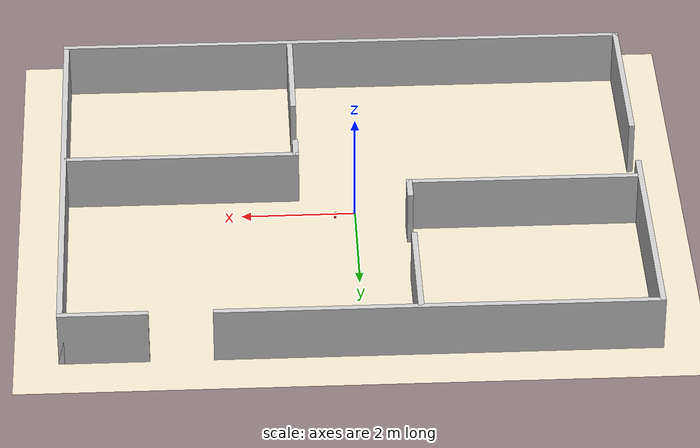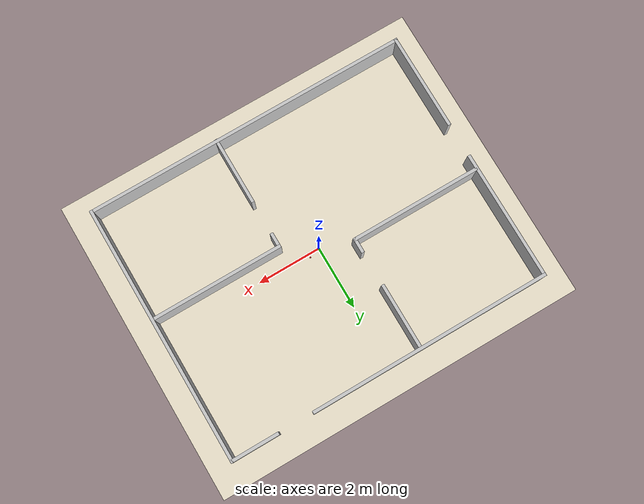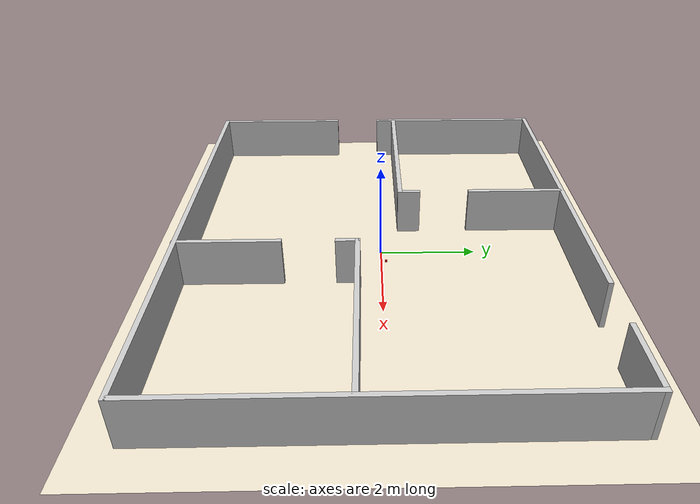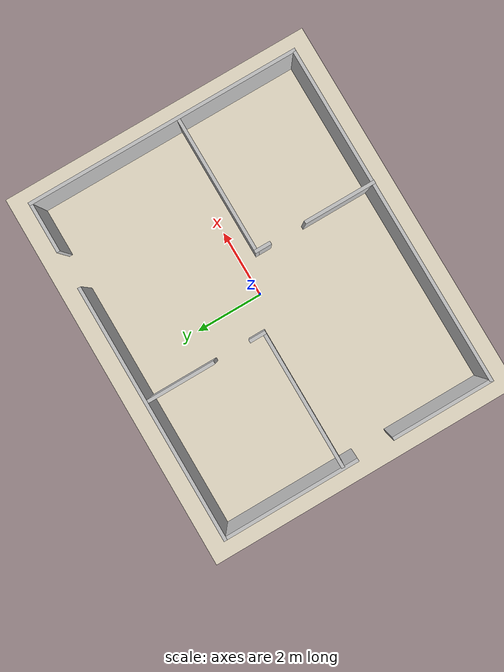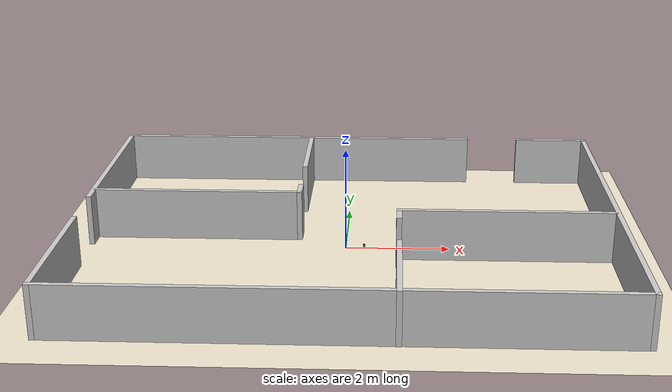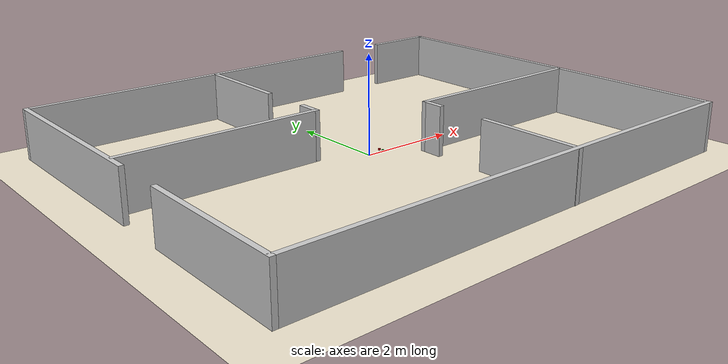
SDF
<?xml version="1.0" ?>
<sdf version="1.6">
  <world name="robot_world">
    <physics name="1ms" type="ignored">
      <max_step_size>0.001</max_step_size>
      <real_time_factor>1.0</real_time_factor>
      <real_time_update_rate>1000</real_time_update_rate>
    </physics>
    <plugin
      filename="ignition-gazebo-physics-system"
      name="gz::sim::systems::Physics">
    </plugin>
    <plugin
      filename="ignition-gazebo-user-commands-system"
      name="gz::sim::systems::UserCommands">
    </plugin>
    <plugin
      filename="ignition-gazebo-scene-broadcaster-system"
      name="gz::sim::systems::SceneBroadcaster">
    </plugin>
    <plugin
      filename="ignition-gazebo-contact-system"
      name="gz::sim::systems::Contact">
    </plugin>
    <gui fullscreen="0">
          <!-- 3D scene -->
          <plugin filename="MinimalScene" name="3D View">
            <gz-gui>
              <title>3D View</title>
              <property type="bool" key="showTitleBar">false</property>
              <property type="string" key="state">docked</property>
            </gz-gui>
            <engine>ogre2</engine>
            <scene>scene</scene>
            <ambient_light>0.4 0.4 0.4</ambient_light>
            <background_color>0.8 0.8 0.8</background_color>
            <camera_pose>-3.5 0 6 0 1.27 0</camera_pose>
            <camera_clip>
              <near>0.25</near>
              <far>25000</far>
            </camera_clip>
          </plugin>

          <!-- Insert simple shapes -->
          <plugin filename="Shapes" name="Shapes">
            <gz-gui>
              <property key="resizable" type="bool">false</property>
              <property key="x" type="double">0</property>
              <property key="y" type="double">0</property>
              <property key="width" type="double">250</property>
              <property key="height" type="double">50</property>
              <property key="state" type="string">floating</property>
              <property key="showTitleBar" type="bool">false</property>
              <property key="cardBackground" type="string">#666666</property>
            </gz-gui>
          </plugin>
          <!-- Translate / rotate -->
          <plugin filename="TransformControl" name="Transform control">
            <gz-gui>
              <property key="resizable" type="bool">false</property>
              <property key="x" type="double">0</property>
              <property key="y" type="double">50</property>
              <property key="width" type="double">250</property>
              <property key="height" type="double">50</property>
              <property key="state" type="string">floating</property>
              <property key="showTitleBar" type="bool">false</property>
              <property key="cardBackground" type="string">#777777</property>
            </gz-gui>
          </plugin>

          <!-- Entity tree -->
          <plugin filename="EntityTree" name="Entity tree">
            <gz-gui>
              <property type="string" key="state">docked_collapsed</property>
            </gz-gui>
          </plugin>

          <!-- Inspector -->
          <plugin filename="ComponentInspector" name="Component inspector">
            <gz-gui>
              <property type="string" key="state">docked_collapsed</property>
            </gz-gui>
          </plugin>

          <!-- World control -->
          <plugin filename="WorldControl" name="World control">
            <gz-gui>
              <title>World control</title>
              <property type="bool" key="showTitleBar">false</property>
              <property type="bool" key="resizable">false</property>
              <property type="double" key="height">72</property>
              <property type="double" key="width">121</property>
              <property type="double" key="z">1</property>

              <property type="string" key="state">floating</property>
              <anchors target="3D View">
                <line own="left" target="left"/>
                <line own="bottom" target="bottom"/>
              </anchors>
            </gz-gui>

            <play_pause>true</play_pause>
            <step>true</step>
            <start_paused>true</start_paused>
            <use_event>true</use_event>

          </plugin>

          <!-- Teleop -->
          <plugin filename="Teleop" name="ignition::gui::plugins::Teleop">
            <topic>/controller/cmd_vel</topic>
            <ignition-gui>
              <property type="bool" key="showTitleBar">true</property>
              <property type="string" key="state">docked</property>
              <property key="resizable" type="bool">true</property>
            </ignition-gui>
          </plugin>

          <!-- visualize lidar -->

          <!-- View angle -->
          <plugin filename="ViewAngle" name="View angle">
            <gz-gui>
              <property type="string" key="state">docked_collapsed</property>
            </gz-gui>
          </plugin>

          <!-- Plugins that add functionality to the scene -->
          <plugin filename="EntityContextMenuPlugin" name="Entity context menu">
          <gz-gui>
            <property key="state" type="string">floating</property>
            <property key="width" type="double">5</property>
            <property key="height" type="double">5</property>
            <property key="showTitleBar" type="bool">false</property>
          </gz-gui>
          </plugin>
          <plugin filename="GzSceneManager" name="Scene Manager">
          <gz-gui>
            <property key="resizable" type="bool">false</property>
            <property key="width" type="double">5</property>
            <property key="height" type="double">5</property>
            <property key="state" type="string">floating</property>
            <property key="showTitleBar" type="bool">false</property>
          </gz-gui>
          </plugin>
          <plugin filename="InteractiveViewControl" name="Interactive view control">
          <gz-gui>
            <property key="resizable" type="bool">false</property>
            <property key="width" type="double">5</property>
            <property key="height" type="double">5</property>
            <property key="state" type="string">floating</property>
            <property key="showTitleBar" type="bool">false</property>
          </gz-gui>
          </plugin>
          <plugin filename="CameraTracking" name="Camera Tracking">
          <gz-gui>
            <property key="resizable" type="bool">false</property>
            <property key="width" type="double">5</property>
            <property key="height" type="double">5</property>
            <property key="state" type="string">floating</property>
            <property key="showTitleBar" type="bool">false</property>
          </gz-gui>
          </plugin>
          <plugin filename="MarkerManager" name="Marker manager">
          <gz-gui>
            <property key="resizable" type="bool">false</property>
            <property key="width" type="double">5</property>
            <property key="height" type="double">5</property>
            <property key="state" type="string">floating</property>
            <property key="showTitleBar" type="bool">false</property>
          </gz-gui>
          </plugin>
          <plugin filename="SelectEntities" name="Select Entities">
          <gz-gui>
            <anchors target="Select entities">
              <line own="right" target="right"/>
              <line own="top" target="top"/>
            </anchors>
            <property key="resizable" type="bool">false</property>
            <property key="width" type="double">5</property>
            <property key="height" type="double">5</property>
            <property key="state" type="string">floating</property>
            <property key="showTitleBar" type="bool">false</property>
          </gz-gui>
          </plugin>
          <plugin filename="VisualizationCapabilities" name="Visualization Capabilities">
          <gz-gui>
            <property key="resizable" type="bool">false</property>
            <property key="width" type="double">5</property>
            <property key="height" type="double">5</property>
            <property key="state" type="string">floating</property>
            <property key="showTitleBar" type="bool">false</property>
          </gz-gui>
          </plugin>

          <plugin filename="Spawn" name="Spawn Entities">
          <gz-gui>
            <anchors target="Select entities">
              <line own="right" target="right"/>
              <line own="top" target="top"/>
            </anchors>
            <property key="resizable" type="bool">false</property>
            <property key="width" type="double">5</property>
            <property key="height" type="double">5</property>
            <property key="state" type="string">floating</property>
            <property key="showTitleBar" type="bool">false</property>
          </gz-gui>
          </plugin>

          <!-- World statistics -->
          <plugin filename="WorldStats" name="World stats">
          <gz-gui>
            <title>World stats</title>
            <property type="bool" key="showTitleBar">false</property>
            <property type="bool" key="resizable">false</property>
            <property type="double" key="height">110</property>
            <property type="double" key="width">290</property>
            <property type="double" key="z">1</property>

            <property type="string" key="state">floating</property>
            <anchors target="3D View">
              <line own="right" target="right"/>
              <line own="bottom" target="bottom"/>
            </anchors>
          </gz-gui>

          <sim_time>true</sim_time>
          <real_time>true</real_time>
          <real_time_factor>true</real_time_factor>
          <iterations>true</iterations>
          </plugin>

          <!-- Insert lights -->
          <plugin filename="Lights" name="Lights">
          <gz-gui>
            <property key="resizable" type="bool">false</property>
            <property key="x" type="double">250</property>
            <property key="y" type="double">0</property>
            <property key="width" type="double">150</property>
            <property key="height" type="double">50</property>
            <property key="state" type="string">floating</property>
            <property key="showTitleBar" type="bool">false</property>
            <property key="cardBackground" type="string">#666666</property>
          </gz-gui>
          </plugin>

          <!-- Screenshot -->
          <plugin filename="Screenshot" name="Screenshot">
          <gz-gui>
            <property key="resizable" type="bool">false</property>
            <property key="x" type="double">250</property>
            <property key="y" type="double">50</property>
            <property key="width" type="double">50</property>
            <property key="height" type="double">50</property>
            <property key="state" type="string">floating</property>
            <property key="showTitleBar" type="bool">false</property>
            <property key="cardBackground" type="string">#777777</property>
          </gz-gui>
          </plugin>

    </gui>
    <scene>
      <ambient>1.0 1.0 1.0</ambient>
      <background>0.8 0.8 0.8</background>
    </scene>
    <light type="directional" name="sun">
      <cast_shadows>true</cast_shadows>
      <pose>0 0 10 0 0 0</pose>
      <diffuse>0.8 0.8 0.8 1</diffuse>
      <specular>0.2 0.2 0.2 1</specular>
      <attenuation>
        <range>1000</range>
        <constant>0.9</constant>
        <linear>0.01</linear>
        <quadratic>0.001</quadratic>
      </attenuation>
      <direction>-0.5 0.1 -0.9</direction>
    </light>

    <model name="ground_plane">
      <static>true</static>
      <link name="link">
        <collision name="collision">
          <geometry>
            <plane>
              <normal>0 0 1</normal>
              <size>100 100</size>
            </plane>
          </geometry>
        </collision>
        <visual name="visual">
          <geometry>
            <plane>
              <normal>0 0 1</normal>
              <size>100 100</size>
            </plane>
          </geometry>
          <material>
            <ambient>0.94 0.90 0.81 1</ambient>
            <diffuse>0.94 0.90 0.81 1</diffuse>
            <specular>1 1 1 0</specular>
          </material>
        </visual>
      </link>
    </model>
    <model name='RoboCup_Home'>
      <pose frame=''>0.0595 -0.023998 0 0 -0 0</pose>
      <link name='Wall_10'>
        <collision name='Wall_10_Collision'>
          <geometry>
            <box>
              <size>8.139 0.1 1</size>
            </box>
          </geometry>
          <pose frame=''>0 0 0.5 0 -0 0</pose>
          <max_contacts>10</max_contacts>
          <surface>
            <contact>
              <ode/>
            </contact>
            <bounce/>
            <friction>
              <torsional>
                <ode/>
              </torsional>
              <ode/>
            </friction>
          </surface>
        </collision>
        <visual name='Wall_10_Visual'>
          <pose frame=''>0 0 0.5 0 -0 0</pose>
          <geometry>
            <box>
              <size>8.139 0.1 1</size>
            </box>
          </geometry>
          <material>
            <ambient>0.8 0.8 0.8 1</ambient>
            <diffuse>0.8 0.8 0.8 1</diffuse>
            <specular>0.8 0.8 0.8 1</specular>
          </material>
        </visual>
        <pose frame=''>5.0505 0.004498 0 0 -0 1.5708</pose>
        <self_collide>0</self_collide>
        <kinematic>0</kinematic>
        <gravity>1</gravity>
      </link>
      <link name='Wall_16'>
        <collision name='Wall_16_Collision'>
          <geometry>
            <box>
              <size>3.03123 0.1 1</size>
            </box>
          </geometry>
          <pose frame=''>0 0 0.5 0 -0 0</pose>
          <max_contacts>10</max_contacts>
          <surface>
            <contact>
              <ode/>
            </contact>
            <bounce/>
            <friction>
              <torsional>
                <ode/>
              </torsional>
              <ode/>
            </friction>
          </surface>
        </collision>
        <visual name='Wall_16_Visual'>
          <pose frame=''>0 0 0.5 0 -0 0</pose>
          <geometry>
            <box>
              <size>3.03123 0.1 1</size>
            </box>
          </geometry>
          <material>
            <ambient>0.8 0.8 0.8 1</ambient>
            <diffuse>0.8 0.8 0.8 1</diffuse>
            <specular>0.8 0.8 0.8 1</specular>
          </material>
        </visual>
        <pose frame=''>-5.0505 -2.5495 0 0 -0 1.5708</pose>
        <self_collide>0</self_collide>
        <kinematic>0</kinematic>
        <gravity>1</gravity>
      </link>
      <link name='Wall_18'>
        <collision name='Wall_18_Collision'>
          <geometry>
            <box>
              <size>4.05777 0.1 1</size>
            </box>
          </geometry>
          <pose frame=''>0 0 0.5 0 -0 0</pose>
          <max_contacts>10</max_contacts>
          <surface>
            <contact>
              <ode/>
            </contact>
            <bounce/>
            <friction>
              <torsional>
                <ode/>
              </torsional>
              <ode/>
            </friction>
          </surface>
        </collision>
        <visual name='Wall_18_Visual'>
          <pose frame=''>0 0 0.5 0 -0 0</pose>
          <geometry>
            <box>
              <size>4.05777 0.1 1</size>
            </box>
          </geometry>
          <material>
            <ambient>0.8 0.8 0.8 1</ambient>
            <diffuse>0.8 0.8 0.8 1</diffuse>
            <specular>0.8 0.8 0.8 1</specular>
          </material>
        </visual>
        <pose frame=''>-5.0505 2.045 0 0 0 -1.5708</pose>
        <self_collide>0</self_collide>
        <kinematic>0</kinematic>
        <gravity>1</gravity>
      </link>
      <link name='Wall_20'>
        <collision name='Wall_20_Collision'>
          <geometry>
            <box>
              <size>7.591 0.1 1</size>
            </box>
          </geometry>
          <pose frame=''>0 0 0.5 0 -0 0</pose>
          <max_contacts>10</max_contacts>
          <surface>
            <contact>
              <ode/>
            </contact>
            <bounce/>
            <friction>
              <torsional>
                <ode/>
              </torsional>
              <ode/>
            </friction>
          </surface>
        </collision>
        <visual name='Wall_20_Visual'>
          <pose frame=''>0 0 0.5 0 -0 0</pose>
          <geometry>
            <box>
              <size>7.591 0.1 1</size>
            </box>
          </geometry>
          <material>
            <ambient>0.8 0.8 0.8 1</ambient>
            <diffuse>0.8 0.8 0.8 1</diffuse>
            <specular>0.8 0.8 0.8 1</specular>
          </material>
        </visual>
        <pose frame=''>-1.305 4.024 0 0 -0 0</pose>
        <self_collide>0</self_collide>
        <kinematic>0</kinematic>
        <gravity>1</gravity>
      </link>
      <link name='Wall_23'>
        <collision name='Wall_23_Collision'>
          <geometry>
            <box>
              <size>1.53 0.1 1</size>
            </box>
          </geometry>
          <pose frame=''>0 0 0.5 0 -0 0</pose>
          <max_contacts>10</max_contacts>
          <surface>
            <contact>
              <ode/>
            </contact>
            <bounce/>
            <friction>
              <torsional>
                <ode/>
              </torsional>
              <ode/>
            </friction>
          </surface>
        </collision>
        <visual name='Wall_23_Visual'>
          <pose frame=''>0 0 0.5 0 -0 0</pose>
          <geometry>
            <box>
              <size>1.53 0.1 1</size>
            </box>
          </geometry>
          <material>
            <ambient>0.8 0.8 0.8 1</ambient>
            <diffuse>0.8 0.8 0.8 1</diffuse>
            <specular>0.8 0.8 0.8 1</specular>
          </material>
        </visual>
        <pose frame=''>4.3355 4.024 0 0 -0 3.14159</pose>
        <self_collide>0</self_collide>
        <kinematic>0</kinematic>
        <gravity>1</gravity>
      </link>
      <link name='Wall_25'>
        <collision name='Wall_25_Collision'>
          <geometry>
            <box>
              <size>4.103 0.1 1</size>
            </box>
          </geometry>
          <pose frame=''>0 0 0.5 0 -0 0</pose>
          <max_contacts>10</max_contacts>
          <surface>
            <contact>
              <ode/>
            </contact>
            <bounce/>
            <friction>
              <torsional>
                <ode/>
              </torsional>
              <ode/>
            </friction>
          </surface>
        </collision>
        <visual name='Wall_25_Visual'>
          <pose frame=''>0 0 0.5 0 -0 0</pose>
          <geometry>
            <box>
              <size>4.103 0.1 1</size>
            </box>
          </geometry>
          <material>
            <ambient>0.8 0.8 0.8 1</ambient>
            <diffuse>0.8 0.8 0.8 1</diffuse>
            <specular>0.8 0.8 0.8 1</specular>
          </material>
        </visual>
        <pose frame=''>-2.991 0.456998 0 0 -0 0</pose>
        <self_collide>0</self_collide>
        <kinematic>0</kinematic>
        <gravity>1</gravity>
      </link>
      <link name='Wall_26'>
        <collision name='Wall_26_Collision'>
          <geometry>
            <box>
              <size>0.491228 0.1 1</size>
            </box>
          </geometry>
          <pose frame=''>0 0 0.5 0 -0 0</pose>
          <max_contacts>10</max_contacts>
          <surface>
            <contact>
              <ode/>
            </contact>
            <bounce/>
            <friction>
              <torsional>
                <ode/>
              </torsional>
              <ode/>
            </friction>
          </surface>
        </collision>
        <visual name='Wall_26_Visual'>
          <pose frame=''>0 0 0.5 0 -0 0</pose>
          <geometry>
            <box>
              <size>0.491228 0.1 1</size>
            </box>
          </geometry>
          <material>
            <ambient>0.8 0.8 0.8 1</ambient>
            <diffuse>0.8 0.8 0.8 1</diffuse>
            <specular>0.8 0.8 0.8 1</specular>
          </material>
        </visual>
        <pose frame=''>-0.9895 0.652498 0 0 -0 1.5708</pose>
        <self_collide>0</self_collide>
        <kinematic>0</kinematic>
        <gravity>1</gravity>
      </link>
      <link name='Wall_28'>
        <collision name='Wall_28_Collision'>
          <geometry>
            <box>
              <size>2.0553 0.1 1</size>
            </box>
          </geometry>
          <pose frame=''>0 0 0.5 0 -0 0</pose>
          <max_contacts>10</max_contacts>
          <surface>
            <contact>
              <ode/>
            </contact>
            <bounce/>
            <friction>
              <torsional>
                <ode/>
              </torsional>
              <ode/>
            </friction>
          </surface>
        </collision>
        <visual name='Wall_28_Visual'>
          <pose frame=''>0 0 0.5 0 -0 0</pose>
          <geometry>
            <box>
              <size>2.0553 0.1 1</size>
            </box>
          </geometry>
          <material>
            <ambient>0.8 0.8 0.8 1</ambient>
            <diffuse>0.8 0.8 0.8 1</diffuse>
            <specular>0.8 0.8 0.8 1</specular>
          </material>
        </visual>
        <pose frame=''>-0.9895 2.9875 0 0 0 -1.5708</pose>
        <self_collide>0</self_collide>
        <kinematic>0</kinematic>
        <gravity>1</gravity>
      </link>
      <link name='Wall_30'>
        <collision name='Wall_30_Collision'>
          <geometry>
            <box>
              <size>4.129 0.1 1</size>
            </box>
          </geometry>
          <pose frame=''>0 0 0.5 0 -0 0</pose>
          <max_contacts>10</max_contacts>
          <surface>
            <contact>
              <ode/>
            </contact>
            <bounce/>
            <friction>
              <torsional>
                <ode/>
              </torsional>
              <ode/>
            </friction>
          </surface>
        </collision>
        <visual name='Wall_30_Visual'>
          <pose frame=''>0 0 0.5 0 -0 0</pose>
          <geometry>
            <box>
              <size>4.129 0.1 1</size>
            </box>
          </geometry>
          <material>
            <ambient>0.8 0.8 0.8 1</ambient>
            <diffuse>0.8 0.8 0.8 1</diffuse>
            <specular>0.8 0.8 0.8 1</specular>
          </material>
        </visual>
        <pose frame=''>2.975 -0.456001 0 0 -0 3.14159</pose>
        <self_collide>0</self_collide>
        <kinematic>0</kinematic>
        <gravity>1</gravity>
      </link>
      <link name='Wall_31'>
        <collision name='Wall_31_Collision'>
          <geometry>
            <box>
              <size>0.49 0.1 1</size>
            </box>
          </geometry>
          <pose frame=''>0 0 0.5 0 -0 0</pose>
          <max_contacts>10</max_contacts>
          <surface>
            <contact>
              <ode/>
            </contact>
            <bounce/>
            <friction>
              <torsional>
                <ode/>
              </torsional>
              <ode/>
            </friction>
          </surface>
        </collision>
        <visual name='Wall_31_Visual'>
          <pose frame=''>0 0 0.5 0 -0 0</pose>
          <geometry>
            <box>
              <size>0.49 0.1 1</size>
            </box>
          </geometry>
          <material>
            <ambient>0.8 0.8 0.8 1</ambient>
            <diffuse>0.8 0.8 0.8 1</diffuse>
            <specular>0.8 0.8 0.8 1</specular>
          </material>
        </visual>
        <pose frame=''>0.9605 -0.651002 0 0 0 -1.5708</pose>
        <self_collide>0</self_collide>
        <kinematic>0</kinematic>
        <gravity>1</gravity>
      </link>
      <link name='Wall_33'>
        <collision name='Wall_33_Collision'>
          <geometry>
            <box>
              <size>2.138 0.1 1</size>
            </box>
          </geometry>
          <pose frame=''>0 0 0.5 0 -0 0</pose>
          <max_contacts>10</max_contacts>
          <surface>
            <contact>
              <ode/>
            </contact>
            <bounce/>
            <friction>
              <torsional>
                <ode/>
              </torsional>
              <ode/>
            </friction>
          </surface>
        </collision>
        <visual name='Wall_33_Visual'>
          <pose frame=''>0 0 0.5 0 -0 0</pose>
          <geometry>
            <box>
              <size>2.138 0.1 1</size>
            </box>
          </geometry>
          <material>
            <ambient>0.8 0.8 0.8 1</ambient>
            <diffuse>0.8 0.8 0.8 1</diffuse>
            <specular>0.8 0.8 0.8 1</specular>
          </material>
        </visual>
        <pose frame=''>0.9605 -3.005 0 0 -0 1.5708</pose>
        <self_collide>0</self_collide>
        <kinematic>0</kinematic>
        <gravity>1</gravity>
      </link>
      <link name='Wall_6'>
        <collision name='Wall_6_Collision'>
          <geometry>
            <box>
              <size>10.2 0.1 1</size>
            </box>
          </geometry>
          <pose frame=''>0 0 0.5 0 -0 0</pose>
          <max_contacts>10</max_contacts>
          <surface>
            <contact>
              <ode/>
            </contact>
            <bounce/>
            <friction>
              <torsional>
                <ode/>
              </torsional>
              <ode/>
            </friction>
          </surface>
        </collision>
        <visual name='Wall_6_Visual'>
          <pose frame=''>0 0 0.5 0 -0 0</pose>
          <geometry>
            <box>
              <size>10.2 0.1 1</size>
            </box>
          </geometry>
          <material>
            <ambient>0.8 0.8 0.8 1</ambient>
            <diffuse>0.8 0.8 0.8 1</diffuse>
            <specular>0.8 0.8 0.8 1</specular>
          </material>
        </visual>
        <pose frame=''>0 -4.015 0 0 -0 0</pose>
        <self_collide>0</self_collide>
        <kinematic>0</kinematic>
        <gravity>1</gravity>
      </link>
      <static>1</static>
    </model>

    <!-- Demo pickup blocks for LanderPi arm -->
    <model name='demo_block_red'>
      <pose>0.35 0.10 0.025 0 0 0</pose>
      <static>false</static>
      <link name='body'>
        <inertial>
          <mass>0.03</mass>
          <inertia>
            <ixx>3.75e-05</ixx>
            <iyy>3.75e-05</iyy>
            <izz>3.75e-05</izz>
          </inertia>
        </inertial>
        <collision name='collision'>
          <geometry>
            <box>
              <size>0.035 0.035 0.035</size>
            </box>
          </geometry>
          <surface>
            <contact>
              <collide_bitmask>0xff</collide_bitmask>
              <ode>
                <kp>200000.0</kp>
                <kd>1000.0</kd>
                <max_vel>0.05</max_vel>
                <min_depth>0.001</min_depth>
              </ode>
            </contact>
            <friction>
              <ode>
                <mu>20.0</mu>
                <mu2>20.0</mu2>
                <slip1>0.0</slip1>
                <slip2>0.0</slip2>
              </ode>
              <torsional>
                <coefficient>10.0</coefficient>
                <use_patch_radius>true</use_patch_radius>
                <patch_radius>0.005</patch_radius>
              </torsional>
            </friction>
          </surface>
        </collision>
        <visual name='visual'>
          <geometry>
            <box>
              <size>0.035 0.035 0.035</size>
            </box>
          </geometry>
          <material>
            <ambient>0.9 0.1 0.1 1</ambient>
            <diffuse>0.9 0.1 0.1 1</diffuse>
          </material>
        </visual>
      </link>
    </model>

    <model name='demo_block_green'>
      <pose>0.35 0.0 0.025 0 0 0</pose>
      <static>false</static>
      <link name='body'>
        <inertial>
          <mass>0.03</mass>
          <inertia>
            <ixx>3.75e-05</ixx>
            <iyy>3.75e-05</iyy>
            <izz>3.75e-05</izz>
          </inertia>
        </inertial>
        <collision name='collision'>
          <geometry>
            <box>
              <size>0.035 0.035 0.035</size>
            </box>
          </geometry>
          <surface>
            <contact>
              <collide_bitmask>0xff</collide_bitmask>
              <ode>
                <kp>200000.0</kp>
                <kd>1000.0</kd>
                <max_vel>0.05</max_vel>
                <min_depth>0.001</min_depth>
              </ode>
            </contact>
            <friction>
              <ode>
                <mu>20.0</mu>
                <mu2>20.0</mu2>
                <slip1>0.0</slip1>
                <slip2>0.0</slip2>
              </ode>
              <torsional>
                <coefficient>10.0</coefficient>
                <use_patch_radius>true</use_patch_radius>
                <patch_radius>0.005</patch_radius>
              </torsional>
            </friction>
          </surface>
        </collision>
        <visual name='visual'>
          <geometry>
            <box>
              <size>0.035 0.035 0.035</size>
            </box>
          </geometry>
          <material>
            <ambient>0.1 0.7 0.1 1</ambient>
            <diffuse>0.1 0.7 0.1 1</diffuse>
          </material>
        </visual>
      </link>
    </model>
  </world>
</sdf>
